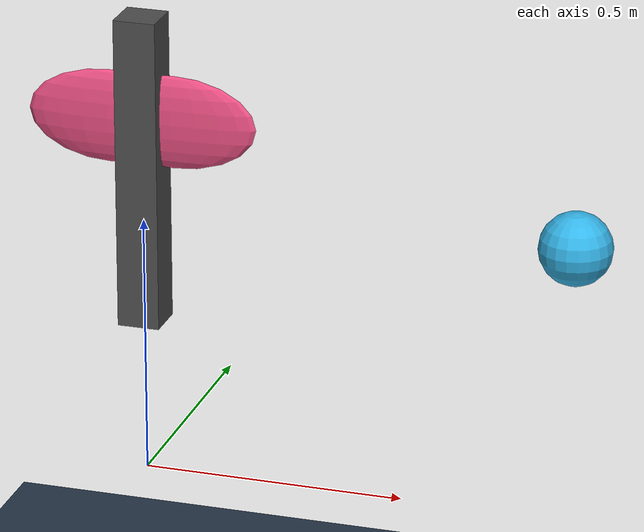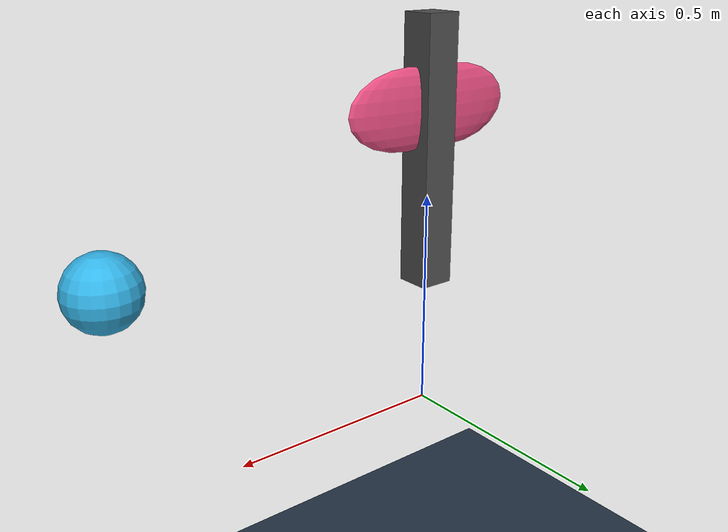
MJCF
<mujoco model="tide_jellyfish">
  <compiler angle="radian"/>
  <option timestep="0.002" integrator="Euler" iterations="100" tolerance="1e-8" gravity="0 0 -0.5" density="1.0" viscosity="0.08" wind="0.25 0 0" cone="pyramidal"/>
  <asset>
    <texture name="floor_grid" type="2d" builtin="checker" rgb1="0.10 0.14 0.20" rgb2="0.18 0.26 0.34" width="512" height="512"/>
    <material name="floor_material" texture="floor_grid" texrepeat="8 8" reflectance="0.1"/>
  </asset>
  <worldbody>
    <light directional="true" pos="0 -2 5" dir="0 0.3 -1" diffuse="0.9 0.9 0.9" specular="0.3 0.3 0.3"/>
    <geom name="floor" type="plane" size="5 5 0.1" pos="0 0 -0.5" material="floor_material" contype="0" conaffinity="0"/>
    <body name="mount" pos="0 0 0.6">
      <geom name="mast" type="box" size="0.04 0.04 0.3" rgba="0.3 0.3 0.3 1" contype="0" conaffinity="0"/>
      <body name="finL" pos="-0.06 0 0.1">
        <joint name="flapL" type="hinge" axis="0 1 0" damping="0.4" stiffness="2.0"/>
        <geom name="finL_geom" type="ellipsoid" size="0.16 0.02 0.09" rgba="0.9 0.3 0.5 1" mass="0.2" fluidshape="ellipsoid" fluidcoef="0.9 0.4 0.6 0.5 0.7" contype="0" conaffinity="0"/>
      </body>
      <body name="finR" pos="0.06 0 0.1">
        <joint name="flapR" type="hinge" axis="0 1 0" damping="0.4" stiffness="2.0"/>
        <geom name="finR_geom" type="ellipsoid" size="0.16 0.02 0.09" rgba="0.9 0.3 0.5 1" mass="0.2" fluidshape="ellipsoid" fluidcoef="0.9 0.4 0.6 0.5 0.7" contype="0" conaffinity="0"/>
      </body>
    </body>
    <body name="floater" pos="0.8 0.1 0.5">
      <freejoint name="freeF"/>
      <geom name="float_geom" type="sphere" size="0.07" rgba="0.2 0.7 0.9 1" mass="0.3" contype="0" conaffinity="0"/>
    </body>
  </worldbody>
  <actuator>
    <general name="swimL" joint="flapL" dyntype="filter" gainprm="6" biasprm="0 -6 0" ctrlrange="-1 1" gear="1"/>
    <general name="swimR" joint="flapR" dyntype="filter" gainprm="6" biasprm="0 -6 0" ctrlrange="-1 1" gear="1"/>
  </actuator>
</mujoco>
